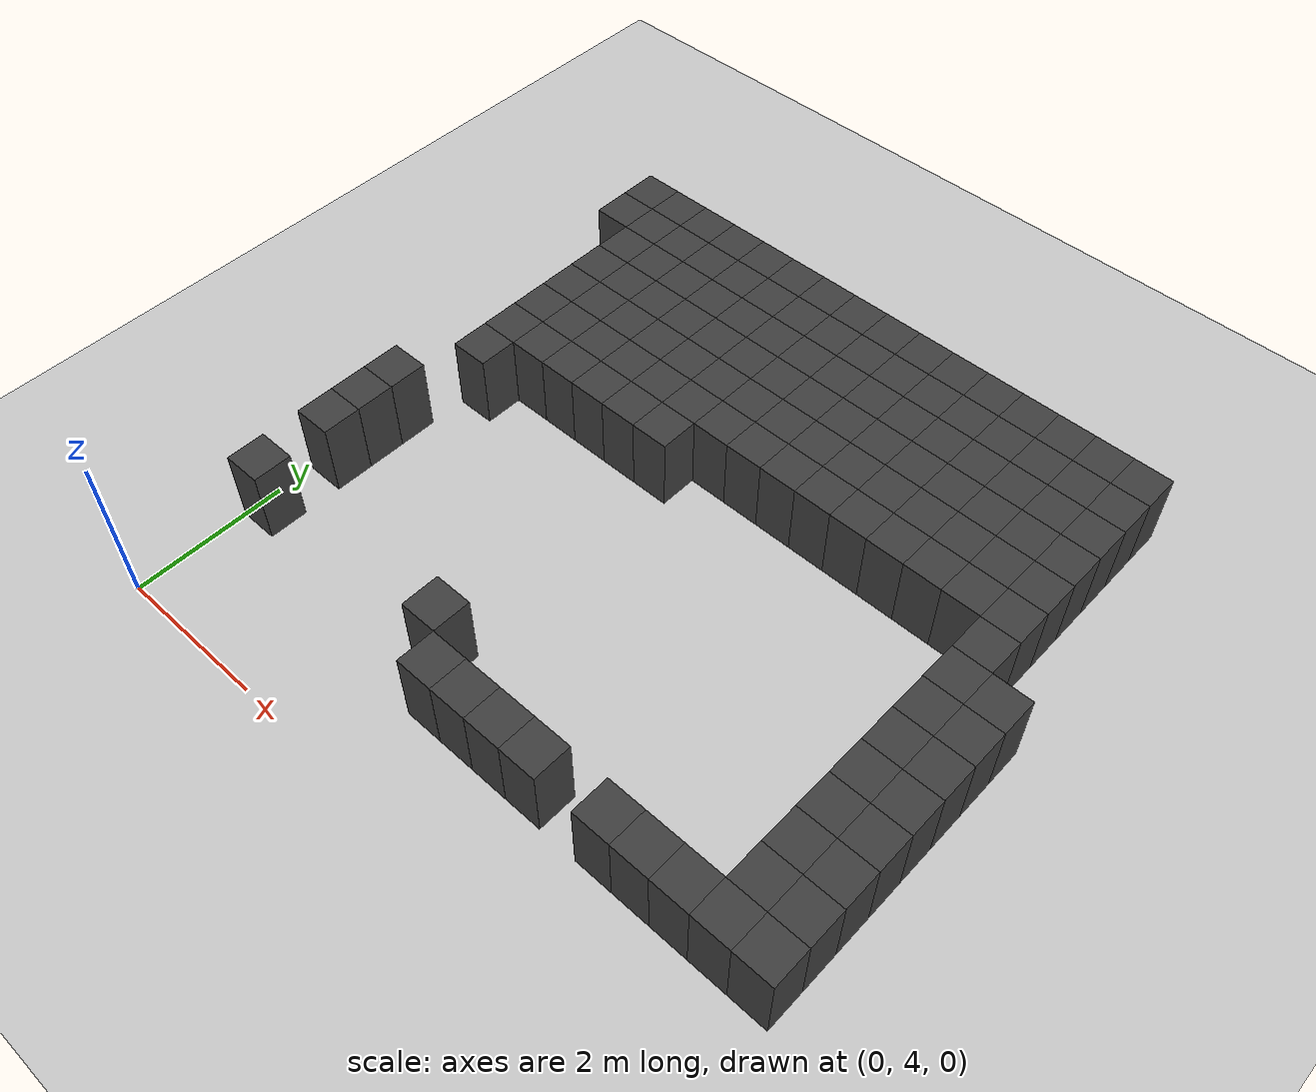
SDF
<sdf version="1.7">
 <world name="map_14056">
  <model name="ground_plane">
   <static>true</static>
   <link name="link">
    <collision name="collision">
     <geometry><plane><normal>0 0 1</normal><size>200 200</size></plane></geometry>
    </collision>
    <visual name="visual">
     <geometry><plane><normal>0 0 1</normal><size>200 200</size></plane></geometry>
     <material><ambient>0.8 0.8 0.8 1</ambient><diffuse>0.8 0.8 0.8 1</diffuse></material>
    </visual>
   </link>
  </model>
  <model name="maze_environment">
   <static>true</static>
   <link name="wall_25">
    <pose>0.250 12.250 0.500 0 0 0</pose>
    <collision name="col"><geometry><box><size>0.5 0.5 1.0</size></box></geometry></collision>
    <visual name="vis">
     <geometry><box><size>0.5 0.5 1.0</size></box></geometry>
     <material><ambient>0.15 0.15 0.15 1</ambient><diffuse>0.25 0.25 0.25 1</diffuse></material>
    </visual>
   </link>
   <link name="wall_26">
    <pose>0.750 12.250 0.500 0 0 0</pose>
    <collision name="col"><geometry><box><size>0.5 0.5 1.0</size></box></geometry></collision>
    <visual name="vis">
     <geometry><box><size>0.5 0.5 1.0</size></box></geometry>
     <material><ambient>0.15 0.15 0.15 1</ambient><diffuse>0.25 0.25 0.25 1</diffuse></material>
    </visual>
   </link>
   <link name="wall_27">
    <pose>1.250 12.250 0.500 0 0 0</pose>
    <collision name="col"><geometry><box><size>0.5 0.5 1.0</size></box></geometry></collision>
    <visual name="vis">
     <geometry><box><size>0.5 0.5 1.0</size></box></geometry>
     <material><ambient>0.15 0.15 0.15 1</ambient><diffuse>0.25 0.25 0.25 1</diffuse></material>
    </visual>
   </link>
   <link name="wall_28">
    <pose>1.750 12.250 0.500 0 0 0</pose>
    <collision name="col"><geometry><box><size>0.5 0.5 1.0</size></box></geometry></collision>
    <visual name="vis">
     <geometry><box><size>0.5 0.5 1.0</size></box></geometry>
     <material><ambient>0.15 0.15 0.15 1</ambient><diffuse>0.25 0.25 0.25 1</diffuse></material>
    </visual>
   </link>
   <link name="wall_29">
    <pose>2.250 12.250 0.500 0 0 0</pose>
    <collision name="col"><geometry><box><size>0.5 0.5 1.0</size></box></geometry></collision>
    <visual name="vis">
     <geometry><box><size>0.5 0.5 1.0</size></box></geometry>
     <material><ambient>0.15 0.15 0.15 1</ambient><diffuse>0.25 0.25 0.25 1</diffuse></material>
    </visual>
   </link>
   <link name="wall_30">
    <pose>2.750 12.250 0.500 0 0 0</pose>
    <collision name="col"><geometry><box><size>0.5 0.5 1.0</size></box></geometry></collision>
    <visual name="vis">
     <geometry><box><size>0.5 0.5 1.0</size></box></geometry>
     <material><ambient>0.15 0.15 0.15 1</ambient><diffuse>0.25 0.25 0.25 1</diffuse></material>
    </visual>
   </link>
   <link name="wall_31">
    <pose>3.250 12.250 0.500 0 0 0</pose>
    <collision name="col"><geometry><box><size>0.5 0.5 1.0</size></box></geometry></collision>
    <visual name="vis">
     <geometry><box><size>0.5 0.5 1.0</size></box></geometry>
     <material><ambient>0.15 0.15 0.15 1</ambient><diffuse>0.25 0.25 0.25 1</diffuse></material>
    </visual>
   </link>
   <link name="wall_32">
    <pose>3.750 12.250 0.500 0 0 0</pose>
    <collision name="col"><geometry><box><size>0.5 0.5 1.0</size></box></geometry></collision>
    <visual name="vis">
     <geometry><box><size>0.5 0.5 1.0</size></box></geometry>
     <material><ambient>0.15 0.15 0.15 1</ambient><diffuse>0.25 0.25 0.25 1</diffuse></material>
    </visual>
   </link>
   <link name="wall_33">
    <pose>4.250 12.250 0.500 0 0 0</pose>
    <collision name="col"><geometry><box><size>0.5 0.5 1.0</size></box></geometry></collision>
    <visual name="vis">
     <geometry><box><size>0.5 0.5 1.0</size></box></geometry>
     <material><ambient>0.15 0.15 0.15 1</ambient><diffuse>0.25 0.25 0.25 1</diffuse></material>
    </visual>
   </link>
   <link name="wall_34">
    <pose>4.750 12.250 0.500 0 0 0</pose>
    <collision name="col"><geometry><box><size>0.5 0.5 1.0</size></box></geometry></collision>
    <visual name="vis">
     <geometry><box><size>0.5 0.5 1.0</size></box></geometry>
     <material><ambient>0.15 0.15 0.15 1</ambient><diffuse>0.25 0.25 0.25 1</diffuse></material>
    </visual>
   </link>
   <link name="wall_35">
    <pose>5.250 12.250 0.500 0 0 0</pose>
    <collision name="col"><geometry><box><size>0.5 0.5 1.0</size></box></geometry></collision>
    <visual name="vis">
     <geometry><box><size>0.5 0.5 1.0</size></box></geometry>
     <material><ambient>0.15 0.15 0.15 1</ambient><diffuse>0.25 0.25 0.25 1</diffuse></material>
    </visual>
   </link>
   <link name="wall_36">
    <pose>5.750 12.250 0.500 0 0 0</pose>
    <collision name="col"><geometry><box><size>0.5 0.5 1.0</size></box></geometry></collision>
    <visual name="vis">
     <geometry><box><size>0.5 0.5 1.0</size></box></geometry>
     <material><ambient>0.15 0.15 0.15 1</ambient><diffuse>0.25 0.25 0.25 1</diffuse></material>
    </visual>
   </link>
   <link name="wall_37">
    <pose>6.250 12.250 0.500 0 0 0</pose>
    <collision name="col"><geometry><box><size>0.5 0.5 1.0</size></box></geometry></collision>
    <visual name="vis">
     <geometry><box><size>0.5 0.5 1.0</size></box></geometry>
     <material><ambient>0.15 0.15 0.15 1</ambient><diffuse>0.25 0.25 0.25 1</diffuse></material>
    </visual>
   </link>
   <link name="wall_38">
    <pose>6.750 12.250 0.500 0 0 0</pose>
    <collision name="col"><geometry><box><size>0.5 0.5 1.0</size></box></geometry></collision>
    <visual name="vis">
     <geometry><box><size>0.5 0.5 1.0</size></box></geometry>
     <material><ambient>0.15 0.15 0.15 1</ambient><diffuse>0.25 0.25 0.25 1</diffuse></material>
    </visual>
   </link>
   <link name="wall_39">
    <pose>7.250 12.250 0.500 0 0 0</pose>
    <collision name="col"><geometry><box><size>0.5 0.5 1.0</size></box></geometry></collision>
    <visual name="vis">
     <geometry><box><size>0.5 0.5 1.0</size></box></geometry>
     <material><ambient>0.15 0.15 0.15 1</ambient><diffuse>0.25 0.25 0.25 1</diffuse></material>
    </visual>
   </link>
   <link name="wall_40">
    <pose>7.750 12.250 0.500 0 0 0</pose>
    <collision name="col"><geometry><box><size>0.5 0.5 1.0</size></box></geometry></collision>
    <visual name="vis">
     <geometry><box><size>0.5 0.5 1.0</size></box></geometry>
     <material><ambient>0.15 0.15 0.15 1</ambient><diffuse>0.25 0.25 0.25 1</diffuse></material>
    </visual>
   </link>
   <link name="wall_72">
    <pose>0.250 11.750 0.500 0 0 0</pose>
    <collision name="col"><geometry><box><size>0.5 0.5 1.0</size></box></geometry></collision>
    <visual name="vis">
     <geometry><box><size>0.5 0.5 1.0</size></box></geometry>
     <material><ambient>0.15 0.15 0.15 1</ambient><diffuse>0.25 0.25 0.25 1</diffuse></material>
    </visual>
   </link>
   <link name="wall_73">
    <pose>0.750 11.750 0.500 0 0 0</pose>
    <collision name="col"><geometry><box><size>0.5 0.5 1.0</size></box></geometry></collision>
    <visual name="vis">
     <geometry><box><size>0.5 0.5 1.0</size></box></geometry>
     <material><ambient>0.15 0.15 0.15 1</ambient><diffuse>0.25 0.25 0.25 1</diffuse></material>
    </visual>
   </link>
   <link name="wall_74">
    <pose>1.250 11.750 0.500 0 0 0</pose>
    <collision name="col"><geometry><box><size>0.5 0.5 1.0</size></box></geometry></collision>
    <visual name="vis">
     <geometry><box><size>0.5 0.5 1.0</size></box></geometry>
     <material><ambient>0.15 0.15 0.15 1</ambient><diffuse>0.25 0.25 0.25 1</diffuse></material>
    </visual>
   </link>
   <link name="wall_75">
    <pose>1.750 11.750 0.500 0 0 0</pose>
    <collision name="col"><geometry><box><size>0.5 0.5 1.0</size></box></geometry></collision>
    <visual name="vis">
     <geometry><box><size>0.5 0.5 1.0</size></box></geometry>
     <material><ambient>0.15 0.15 0.15 1</ambient><diffuse>0.25 0.25 0.25 1</diffuse></material>
    </visual>
   </link>
   <link name="wall_76">
    <pose>2.250 11.750 0.500 0 0 0</pose>
    <collision name="col"><geometry><box><size>0.5 0.5 1.0</size></box></geometry></collision>
    <visual name="vis">
     <geometry><box><size>0.5 0.5 1.0</size></box></geometry>
     <material><ambient>0.15 0.15 0.15 1</ambient><diffuse>0.25 0.25 0.25 1</diffuse></material>
    </visual>
   </link>
   <link name="wall_77">
    <pose>2.750 11.750 0.500 0 0 0</pose>
    <collision name="col"><geometry><box><size>0.5 0.5 1.0</size></box></geometry></collision>
    <visual name="vis">
     <geometry><box><size>0.5 0.5 1.0</size></box></geometry>
     <material><ambient>0.15 0.15 0.15 1</ambient><diffuse>0.25 0.25 0.25 1</diffuse></material>
    </visual>
   </link>
   <link name="wall_78">
    <pose>3.250 11.750 0.500 0 0 0</pose>
    <collision name="col"><geometry><box><size>0.5 0.5 1.0</size></box></geometry></collision>
    <visual name="vis">
     <geometry><box><size>0.5 0.5 1.0</size></box></geometry>
     <material><ambient>0.15 0.15 0.15 1</ambient><diffuse>0.25 0.25 0.25 1</diffuse></material>
    </visual>
   </link>
   <link name="wall_79">
    <pose>3.750 11.750 0.500 0 0 0</pose>
    <collision name="col"><geometry><box><size>0.5 0.5 1.0</size></box></geometry></collision>
    <visual name="vis">
     <geometry><box><size>0.5 0.5 1.0</size></box></geometry>
     <material><ambient>0.15 0.15 0.15 1</ambient><diffuse>0.25 0.25 0.25 1</diffuse></material>
    </visual>
   </link>
   <link name="wall_80">
    <pose>4.250 11.750 0.500 0 0 0</pose>
    <collision name="col"><geometry><box><size>0.5 0.5 1.0</size></box></geometry></collision>
    <visual name="vis">
     <geometry><box><size>0.5 0.5 1.0</size></box></geometry>
     <material><ambient>0.15 0.15 0.15 1</ambient><diffuse>0.25 0.25 0.25 1</diffuse></material>
    </visual>
   </link>
   <link name="wall_81">
    <pose>4.750 11.750 0.500 0 0 0</pose>
    <collision name="col"><geometry><box><size>0.5 0.5 1.0</size></box></geometry></collision>
    <visual name="vis">
     <geometry><box><size>0.5 0.5 1.0</size></box></geometry>
     <material><ambient>0.15 0.15 0.15 1</ambient><diffuse>0.25 0.25 0.25 1</diffuse></material>
    </visual>
   </link>
   <link name="wall_82">
    <pose>5.250 11.750 0.500 0 0 0</pose>
    <collision name="col"><geometry><box><size>0.5 0.5 1.0</size></box></geometry></collision>
    <visual name="vis">
     <geometry><box><size>0.5 0.5 1.0</size></box></geometry>
     <material><ambient>0.15 0.15 0.15 1</ambient><diffuse>0.25 0.25 0.25 1</diffuse></material>
    </visual>
   </link>
   <link name="wall_83">
    <pose>5.750 11.750 0.500 0 0 0</pose>
    <collision name="col"><geometry><box><size>0.5 0.5 1.0</size></box></geometry></collision>
    <visual name="vis">
     <geometry><box><size>0.5 0.5 1.0</size></box></geometry>
     <material><ambient>0.15 0.15 0.15 1</ambient><diffuse>0.25 0.25 0.25 1</diffuse></material>
    </visual>
   </link>
   <link name="wall_84">
    <pose>6.250 11.750 0.500 0 0 0</pose>
    <collision name="col"><geometry><box><size>0.5 0.5 1.0</size></box></geometry></collision>
    <visual name="vis">
     <geometry><box><size>0.5 0.5 1.0</size></box></geometry>
     <material><ambient>0.15 0.15 0.15 1</ambient><diffuse>0.25 0.25 0.25 1</diffuse></material>
    </visual>
   </link>
   <link name="wall_85">
    <pose>6.750 11.750 0.500 0 0 0</pose>
    <collision name="col"><geometry><box><size>0.5 0.5 1.0</size></box></geometry></collision>
    <visual name="vis">
     <geometry><box><size>0.5 0.5 1.0</size></box></geometry>
     <material><ambient>0.15 0.15 0.15 1</ambient><diffuse>0.25 0.25 0.25 1</diffuse></material>
    </visual>
   </link>
   <link name="wall_86">
    <pose>7.250 11.750 0.500 0 0 0</pose>
    <collision name="col"><geometry><box><size>0.5 0.5 1.0</size></box></geometry></collision>
    <visual name="vis">
     <geometry><box><size>0.5 0.5 1.0</size></box></geometry>
     <material><ambient>0.15 0.15 0.15 1</ambient><diffuse>0.25 0.25 0.25 1</diffuse></material>
    </visual>
   </link>
   <link name="wall_87">
    <pose>7.750 11.750 0.500 0 0 0</pose>
    <collision name="col"><geometry><box><size>0.5 0.5 1.0</size></box></geometry></collision>
    <visual name="vis">
     <geometry><box><size>0.5 0.5 1.0</size></box></geometry>
     <material><ambient>0.15 0.15 0.15 1</ambient><diffuse>0.25 0.25 0.25 1</diffuse></material>
    </visual>
   </link>
   <link name="wall_112">
    <pose>0.750 11.250 0.500 0 0 0</pose>
    <collision name="col"><geometry><box><size>0.5 0.5 1.0</size></box></geometry></collision>
    <visual name="vis">
     <geometry><box><size>0.5 0.5 1.0</size></box></geometry>
     <material><ambient>0.15 0.15 0.15 1</ambient><diffuse>0.25 0.25 0.25 1</diffuse></material>
    </visual>
   </link>
   <link name="wall_113">
    <pose>1.250 11.250 0.500 0 0 0</pose>
    <collision name="col"><geometry><box><size>0.5 0.5 1.0</size></box></geometry></collision>
    <visual name="vis">
     <geometry><box><size>0.5 0.5 1.0</size></box></geometry>
     <material><ambient>0.15 0.15 0.15 1</ambient><diffuse>0.25 0.25 0.25 1</diffuse></material>
    </visual>
   </link>
   <link name="wall_114">
    <pose>1.750 11.250 0.500 0 0 0</pose>
    <collision name="col"><geometry><box><size>0.5 0.5 1.0</size></box></geometry></collision>
    <visual name="vis">
     <geometry><box><size>0.5 0.5 1.0</size></box></geometry>
     <material><ambient>0.15 0.15 0.15 1</ambient><diffuse>0.25 0.25 0.25 1</diffuse></material>
    </visual>
   </link>
   <link name="wall_115">
    <pose>2.250 11.250 0.500 0 0 0</pose>
    <collision name="col"><geometry><box><size>0.5 0.5 1.0</size></box></geometry></collision>
    <visual name="vis">
     <geometry><box><size>0.5 0.5 1.0</size></box></geometry>
     <material><ambient>0.15 0.15 0.15 1</ambient><diffuse>0.25 0.25 0.25 1</diffuse></material>
    </visual>
   </link>
   <link name="wall_116">
    <pose>2.750 11.250 0.500 0 0 0</pose>
    <collision name="col"><geometry><box><size>0.5 0.5 1.0</size></box></geometry></collision>
    <visual name="vis">
     <geometry><box><size>0.5 0.5 1.0</size></box></geometry>
     <material><ambient>0.15 0.15 0.15 1</ambient><diffuse>0.25 0.25 0.25 1</diffuse></material>
    </visual>
   </link>
   <link name="wall_117">
    <pose>3.250 11.250 0.500 0 0 0</pose>
    <collision name="col"><geometry><box><size>0.5 0.5 1.0</size></box></geometry></collision>
    <visual name="vis">
     <geometry><box><size>0.5 0.5 1.0</size></box></geometry>
     <material><ambient>0.15 0.15 0.15 1</ambient><diffuse>0.25 0.25 0.25 1</diffuse></material>
    </visual>
   </link>
   <link name="wall_118">
    <pose>3.750 11.250 0.500 0 0 0</pose>
    <collision name="col"><geometry><box><size>0.5 0.5 1.0</size></box></geometry></collision>
    <visual name="vis">
     <geometry><box><size>0.5 0.5 1.0</size></box></geometry>
     <material><ambient>0.15 0.15 0.15 1</ambient><diffuse>0.25 0.25 0.25 1</diffuse></material>
    </visual>
   </link>
   <link name="wall_119">
    <pose>4.250 11.250 0.500 0 0 0</pose>
    <collision name="col"><geometry><box><size>0.5 0.5 1.0</size></box></geometry></collision>
    <visual name="vis">
     <geometry><box><size>0.5 0.5 1.0</size></box></geometry>
     <material><ambient>0.15 0.15 0.15 1</ambient><diffuse>0.25 0.25 0.25 1</diffuse></material>
    </visual>
   </link>
   <link name="wall_120">
    <pose>4.750 11.250 0.500 0 0 0</pose>
    <collision name="col"><geometry><box><size>0.5 0.5 1.0</size></box></geometry></collision>
    <visual name="vis">
     <geometry><box><size>0.5 0.5 1.0</size></box></geometry>
     <material><ambient>0.15 0.15 0.15 1</ambient><diffuse>0.25 0.25 0.25 1</diffuse></material>
    </visual>
   </link>
   <link name="wall_121">
    <pose>5.250 11.250 0.500 0 0 0</pose>
    <collision name="col"><geometry><box><size>0.5 0.5 1.0</size></box></geometry></collision>
    <visual name="vis">
     <geometry><box><size>0.5 0.5 1.0</size></box></geometry>
     <material><ambient>0.15 0.15 0.15 1</ambient><diffuse>0.25 0.25 0.25 1</diffuse></material>
    </visual>
   </link>
   <link name="wall_122">
    <pose>5.750 11.250 0.500 0 0 0</pose>
    <collision name="col"><geometry><box><size>0.5 0.5 1.0</size></box></geometry></collision>
    <visual name="vis">
     <geometry><box><size>0.5 0.5 1.0</size></box></geometry>
     <material><ambient>0.15 0.15 0.15 1</ambient><diffuse>0.25 0.25 0.25 1</diffuse></material>
    </visual>
   </link>
   <link name="wall_123">
    <pose>6.250 11.250 0.500 0 0 0</pose>
    <collision name="col"><geometry><box><size>0.5 0.5 1.0</size></box></geometry></collision>
    <visual name="vis">
     <geometry><box><size>0.5 0.5 1.0</size></box></geometry>
     <material><ambient>0.15 0.15 0.15 1</ambient><diffuse>0.25 0.25 0.25 1</diffuse></material>
    </visual>
   </link>
   <link name="wall_124">
    <pose>6.750 11.250 0.500 0 0 0</pose>
    <collision name="col"><geometry><box><size>0.5 0.5 1.0</size></box></geometry></collision>
    <visual name="vis">
     <geometry><box><size>0.5 0.5 1.0</size></box></geometry>
     <material><ambient>0.15 0.15 0.15 1</ambient><diffuse>0.25 0.25 0.25 1</diffuse></material>
    </visual>
   </link>
   <link name="wall_125">
    <pose>7.250 11.250 0.500 0 0 0</pose>
    <collision name="col"><geometry><box><size>0.5 0.5 1.0</size></box></geometry></collision>
    <visual name="vis">
     <geometry><box><size>0.5 0.5 1.0</size></box></geometry>
     <material><ambient>0.15 0.15 0.15 1</ambient><diffuse>0.25 0.25 0.25 1</diffuse></material>
    </visual>
   </link>
   <link name="wall_126">
    <pose>7.750 11.250 0.500 0 0 0</pose>
    <collision name="col"><geometry><box><size>0.5 0.5 1.0</size></box></geometry></collision>
    <visual name="vis">
     <geometry><box><size>0.5 0.5 1.0</size></box></geometry>
     <material><ambient>0.15 0.15 0.15 1</ambient><diffuse>0.25 0.25 0.25 1</diffuse></material>
    </visual>
   </link>
   <link name="wall_151">
    <pose>0.750 10.750 0.500 0 0 0</pose>
    <collision name="col"><geometry><box><size>0.5 0.5 1.0</size></box></geometry></collision>
    <visual name="vis">
     <geometry><box><size>0.5 0.5 1.0</size></box></geometry>
     <material><ambient>0.15 0.15 0.15 1</ambient><diffuse>0.25 0.25 0.25 1</diffuse></material>
    </visual>
   </link>
   <link name="wall_152">
    <pose>1.250 10.750 0.500 0 0 0</pose>
    <collision name="col"><geometry><box><size>0.5 0.5 1.0</size></box></geometry></collision>
    <visual name="vis">
     <geometry><box><size>0.5 0.5 1.0</size></box></geometry>
     <material><ambient>0.15 0.15 0.15 1</ambient><diffuse>0.25 0.25 0.25 1</diffuse></material>
    </visual>
   </link>
   <link name="wall_153">
    <pose>1.750 10.750 0.500 0 0 0</pose>
    <collision name="col"><geometry><box><size>0.5 0.5 1.0</size></box></geometry></collision>
    <visual name="vis">
     <geometry><box><size>0.5 0.5 1.0</size></box></geometry>
     <material><ambient>0.15 0.15 0.15 1</ambient><diffuse>0.25 0.25 0.25 1</diffuse></material>
    </visual>
   </link>
   <link name="wall_154">
    <pose>2.250 10.750 0.500 0 0 0</pose>
    <collision name="col"><geometry><box><size>0.5 0.5 1.0</size></box></geometry></collision>
    <visual name="vis">
     <geometry><box><size>0.5 0.5 1.0</size></box></geometry>
     <material><ambient>0.15 0.15 0.15 1</ambient><diffuse>0.25 0.25 0.25 1</diffuse></material>
    </visual>
   </link>
   <link name="wall_155">
    <pose>2.750 10.750 0.500 0 0 0</pose>
    <collision name="col"><geometry><box><size>0.5 0.5 1.0</size></box></geometry></collision>
    <visual name="vis">
     <geometry><box><size>0.5 0.5 1.0</size></box></geometry>
     <material><ambient>0.15 0.15 0.15 1</ambient><diffuse>0.25 0.25 0.25 1</diffuse></material>
    </visual>
   </link>
   <link name="wall_156">
    <pose>3.250 10.750 0.500 0 0 0</pose>
    <collision name="col"><geometry><box><size>0.5 0.5 1.0</size></box></geometry></collision>
    <visual name="vis">
     <geometry><box><size>0.5 0.5 1.0</size></box></geometry>
     <material><ambient>0.15 0.15 0.15 1</ambient><diffuse>0.25 0.25 0.25 1</diffuse></material>
    </visual>
   </link>
   <link name="wall_157">
    <pose>3.750 10.750 0.500 0 0 0</pose>
    <collision name="col"><geometry><box><size>0.5 0.5 1.0</size></box></geometry></collision>
    <visual name="vis">
     <geometry><box><size>0.5 0.5 1.0</size></box></geometry>
     <material><ambient>0.15 0.15 0.15 1</ambient><diffuse>0.25 0.25 0.25 1</diffuse></material>
    </visual>
   </link>
   <link name="wall_158">
    <pose>4.250 10.750 0.500 0 0 0</pose>
    <collision name="col"><geometry><box><size>0.5 0.5 1.0</size></box></geometry></collision>
    <visual name="vis">
     <geometry><box><size>0.5 0.5 1.0</size></box></geometry>
     <material><ambient>0.15 0.15 0.15 1</ambient><diffuse>0.25 0.25 0.25 1</diffuse></material>
    </visual>
   </link>
   <link name="wall_159">
    <pose>4.750 10.750 0.500 0 0 0</pose>
    <collision name="col"><geometry><box><size>0.5 0.5 1.0</size></box></geometry></collision>
    <visual name="vis">
     <geometry><box><size>0.5 0.5 1.0</size></box></geometry>
     <material><ambient>0.15 0.15 0.15 1</ambient><diffuse>0.25 0.25 0.25 1</diffuse></material>
    </visual>
   </link>
   <link name="wall_160">
    <pose>5.250 10.750 0.500 0 0 0</pose>
    <collision name="col"><geometry><box><size>0.5 0.5 1.0</size></box></geometry></collision>
    <visual name="vis">
     <geometry><box><size>0.5 0.5 1.0</size></box></geometry>
     <material><ambient>0.15 0.15 0.15 1</ambient><diffuse>0.25 0.25 0.25 1</diffuse></material>
    </visual>
   </link>
   <link name="wall_161">
    <pose>5.750 10.750 0.500 0 0 0</pose>
    <collision name="col"><geometry><box><size>0.5 0.5 1.0</size></box></geometry></collision>
    <visual name="vis">
     <geometry><box><size>0.5 0.5 1.0</size></box></geometry>
     <material><ambient>0.15 0.15 0.15 1</ambient><diffuse>0.25 0.25 0.25 1</diffuse></material>
    </visual>
   </link>
   <link name="wall_162">
    <pose>6.250 10.750 0.500 0 0 0</pose>
    <collision name="col"><geometry><box><size>0.5 0.5 1.0</size></box></geometry></collision>
    <visual name="vis">
     <geometry><box><size>0.5 0.5 1.0</size></box></geometry>
     <material><ambient>0.15 0.15 0.15 1</ambient><diffuse>0.25 0.25 0.25 1</diffuse></material>
    </visual>
   </link>
   <link name="wall_163">
    <pose>6.750 10.750 0.500 0 0 0</pose>
    <collision name="col"><geometry><box><size>0.5 0.5 1.0</size></box></geometry></collision>
    <visual name="vis">
     <geometry><box><size>0.5 0.5 1.0</size></box></geometry>
     <material><ambient>0.15 0.15 0.15 1</ambient><diffuse>0.25 0.25 0.25 1</diffuse></material>
    </visual>
   </link>
   <link name="wall_164">
    <pose>7.250 10.750 0.500 0 0 0</pose>
    <collision name="col"><geometry><box><size>0.5 0.5 1.0</size></box></geometry></collision>
    <visual name="vis">
     <geometry><box><size>0.5 0.5 1.0</size></box></geometry>
     <material><ambient>0.15 0.15 0.15 1</ambient><diffuse>0.25 0.25 0.25 1</diffuse></material>
    </visual>
   </link>
   <link name="wall_165">
    <pose>7.750 10.750 0.500 0 0 0</pose>
    <collision name="col"><geometry><box><size>0.5 0.5 1.0</size></box></geometry></collision>
    <visual name="vis">
     <geometry><box><size>0.5 0.5 1.0</size></box></geometry>
     <material><ambient>0.15 0.15 0.15 1</ambient><diffuse>0.25 0.25 0.25 1</diffuse></material>
    </visual>
   </link>
   <link name="wall_192">
    <pose>0.750 10.250 0.500 0 0 0</pose>
    <collision name="col"><geometry><box><size>0.5 0.5 1.0</size></box></geometry></collision>
    <visual name="vis">
     <geometry><box><size>0.5 0.5 1.0</size></box></geometry>
     <material><ambient>0.15 0.15 0.15 1</ambient><diffuse>0.25 0.25 0.25 1</diffuse></material>
    </visual>
   </link>
   <link name="wall_193">
    <pose>1.250 10.250 0.500 0 0 0</pose>
    <collision name="col"><geometry><box><size>0.5 0.5 1.0</size></box></geometry></collision>
    <visual name="vis">
     <geometry><box><size>0.5 0.5 1.0</size></box></geometry>
     <material><ambient>0.15 0.15 0.15 1</ambient><diffuse>0.25 0.25 0.25 1</diffuse></material>
    </visual>
   </link>
   <link name="wall_194">
    <pose>1.750 10.250 0.500 0 0 0</pose>
    <collision name="col"><geometry><box><size>0.5 0.5 1.0</size></box></geometry></collision>
    <visual name="vis">
     <geometry><box><size>0.5 0.5 1.0</size></box></geometry>
     <material><ambient>0.15 0.15 0.15 1</ambient><diffuse>0.25 0.25 0.25 1</diffuse></material>
    </visual>
   </link>
   <link name="wall_195">
    <pose>2.250 10.250 0.500 0 0 0</pose>
    <collision name="col"><geometry><box><size>0.5 0.5 1.0</size></box></geometry></collision>
    <visual name="vis">
     <geometry><box><size>0.5 0.5 1.0</size></box></geometry>
     <material><ambient>0.15 0.15 0.15 1</ambient><diffuse>0.25 0.25 0.25 1</diffuse></material>
    </visual>
   </link>
   <link name="wall_196">
    <pose>2.750 10.250 0.500 0 0 0</pose>
    <collision name="col"><geometry><box><size>0.5 0.5 1.0</size></box></geometry></collision>
    <visual name="vis">
     <geometry><box><size>0.5 0.5 1.0</size></box></geometry>
     <material><ambient>0.15 0.15 0.15 1</ambient><diffuse>0.25 0.25 0.25 1</diffuse></material>
    </visual>
   </link>
   <link name="wall_197">
    <pose>3.250 10.250 0.500 0 0 0</pose>
    <collision name="col"><geometry><box><size>0.5 0.5 1.0</size></box></geometry></collision>
    <visual name="vis">
     <geometry><box><size>0.5 0.5 1.0</size></box></geometry>
     <material><ambient>0.15 0.15 0.15 1</ambient><diffuse>0.25 0.25 0.25 1</diffuse></material>
    </visual>
   </link>
   <link name="wall_198">
    <pose>3.750 10.250 0.500 0 0 0</pose>
    <collision name="col"><geometry><box><size>0.5 0.5 1.0</size></box></geometry></collision>
    <visual name="vis">
     <geometry><box><size>0.5 0.5 1.0</size></box></geometry>
     <material><ambient>0.15 0.15 0.15 1</ambient><diffuse>0.25 0.25 0.25 1</diffuse></material>
    </visual>
   </link>
   <link name="wall_199">
    <pose>4.250 10.250 0.500 0 0 0</pose>
    <collision name="col"><geometry><box><size>0.5 0.5 1.0</size></box></geometry></collision>
    <visual name="vis">
     <geometry><box><size>0.5 0.5 1.0</size></box></geometry>
     <material><ambient>0.15 0.15 0.15 1</ambient><diffuse>0.25 0.25 0.25 1</diffuse></material>
    </visual>
   </link>
   <link name="wall_200">
    <pose>4.750 10.250 0.500 0 0 0</pose>
    <collision name="col"><geometry><box><size>0.5 0.5 1.0</size></box></geometry></collision>
    <visual name="vis">
     <geometry><box><size>0.5 0.5 1.0</size></box></geometry>
     <material><ambient>0.15 0.15 0.15 1</ambient><diffuse>0.25 0.25 0.25 1</diffuse></material>
    </visual>
   </link>
   <link name="wall_201">
    <pose>5.250 10.250 0.500 0 0 0</pose>
    <collision name="col"><geometry><box><size>0.5 0.5 1.0</size></box></geometry></collision>
    <visual name="vis">
     <geometry><box><size>0.5 0.5 1.0</size></box></geometry>
     <material><ambient>0.15 0.15 0.15 1</ambient><diffuse>0.25 0.25 0.25 1</diffuse></material>
    </visual>
   </link>
   <link name="wall_202">
    <pose>5.750 10.250 0.500 0 0 0</pose>
    <collision name="col"><geometry><box><size>0.5 0.5 1.0</size></box></geometry></collision>
    <visual name="vis">
     <geometry><box><size>0.5 0.5 1.0</size></box></geometry>
     <material><ambient>0.15 0.15 0.15 1</ambient><diffuse>0.25 0.25 0.25 1</diffuse></material>
    </visual>
   </link>
   <link name="wall_203">
    <pose>6.250 10.250 0.500 0 0 0</pose>
    <collision name="col"><geometry><box><size>0.5 0.5 1.0</size></box></geometry></collision>
    <visual name="vis">
     <geometry><box><size>0.5 0.5 1.0</size></box></geometry>
     <material><ambient>0.15 0.15 0.15 1</ambient><diffuse>0.25 0.25 0.25 1</diffuse></material>
    </visual>
   </link>
   <link name="wall_204">
    <pose>6.750 10.250 0.500 0 0 0</pose>
    <collision name="col"><geometry><box><size>0.5 0.5 1.0</size></box></geometry></collision>
    <visual name="vis">
     <geometry><box><size>0.5 0.5 1.0</size></box></geometry>
     <material><ambient>0.15 0.15 0.15 1</ambient><diffuse>0.25 0.25 0.25 1</diffuse></material>
    </visual>
   </link>
   <link name="wall_205">
    <pose>7.250 10.250 0.500 0 0 0</pose>
    <collision name="col"><geometry><box><size>0.5 0.5 1.0</size></box></geometry></collision>
    <visual name="vis">
     <geometry><box><size>0.5 0.5 1.0</size></box></geometry>
     <material><ambient>0.15 0.15 0.15 1</ambient><diffuse>0.25 0.25 0.25 1</diffuse></material>
    </visual>
   </link>
   <link name="wall_206">
    <pose>7.750 10.250 0.500 0 0 0</pose>
    <collision name="col"><geometry><box><size>0.5 0.5 1.0</size></box></geometry></collision>
    <visual name="vis">
     <geometry><box><size>0.5 0.5 1.0</size></box></geometry>
     <material><ambient>0.15 0.15 0.15 1</ambient><diffuse>0.25 0.25 0.25 1</diffuse></material>
    </visual>
   </link>
   <link name="wall_233">
    <pose>0.750 9.750 0.500 0 0 0</pose>
    <collision name="col"><geometry><box><size>0.5 0.5 1.0</size></box></geometry></collision>
    <visual name="vis">
     <geometry><box><size>0.5 0.5 1.0</size></box></geometry>
     <material><ambient>0.15 0.15 0.15 1</ambient><diffuse>0.25 0.25 0.25 1</diffuse></material>
    </visual>
   </link>
   <link name="wall_234">
    <pose>1.250 9.750 0.500 0 0 0</pose>
    <collision name="col"><geometry><box><size>0.5 0.5 1.0</size></box></geometry></collision>
    <visual name="vis">
     <geometry><box><size>0.5 0.5 1.0</size></box></geometry>
     <material><ambient>0.15 0.15 0.15 1</ambient><diffuse>0.25 0.25 0.25 1</diffuse></material>
    </visual>
   </link>
   <link name="wall_235">
    <pose>1.750 9.750 0.500 0 0 0</pose>
    <collision name="col"><geometry><box><size>0.5 0.5 1.0</size></box></geometry></collision>
    <visual name="vis">
     <geometry><box><size>0.5 0.5 1.0</size></box></geometry>
     <material><ambient>0.15 0.15 0.15 1</ambient><diffuse>0.25 0.25 0.25 1</diffuse></material>
    </visual>
   </link>
   <link name="wall_236">
    <pose>2.250 9.750 0.500 0 0 0</pose>
    <collision name="col"><geometry><box><size>0.5 0.5 1.0</size></box></geometry></collision>
    <visual name="vis">
     <geometry><box><size>0.5 0.5 1.0</size></box></geometry>
     <material><ambient>0.15 0.15 0.15 1</ambient><diffuse>0.25 0.25 0.25 1</diffuse></material>
    </visual>
   </link>
   <link name="wall_237">
    <pose>2.750 9.750 0.500 0 0 0</pose>
    <collision name="col"><geometry><box><size>0.5 0.5 1.0</size></box></geometry></collision>
    <visual name="vis">
     <geometry><box><size>0.5 0.5 1.0</size></box></geometry>
     <material><ambient>0.15 0.15 0.15 1</ambient><diffuse>0.25 0.25 0.25 1</diffuse></material>
    </visual>
   </link>
   <link name="wall_238">
    <pose>3.250 9.750 0.500 0 0 0</pose>
    <collision name="col"><geometry><box><size>0.5 0.5 1.0</size></box></geometry></collision>
    <visual name="vis">
     <geometry><box><size>0.5 0.5 1.0</size></box></geometry>
     <material><ambient>0.15 0.15 0.15 1</ambient><diffuse>0.25 0.25 0.25 1</diffuse></material>
    </visual>
   </link>
   <link name="wall_239">
    <pose>3.750 9.750 0.500 0 0 0</pose>
    <collision name="col"><geometry><box><size>0.5 0.5 1.0</size></box></geometry></collision>
    <visual name="vis">
     <geometry><box><size>0.5 0.5 1.0</size></box></geometry>
     <material><ambient>0.15 0.15 0.15 1</ambient><diffuse>0.25 0.25 0.25 1</diffuse></material>
    </visual>
   </link>
   <link name="wall_240">
    <pose>4.250 9.750 0.500 0 0 0</pose>
    <collision name="col"><geometry><box><size>0.5 0.5 1.0</size></box></geometry></collision>
    <visual name="vis">
     <geometry><box><size>0.5 0.5 1.0</size></box></geometry>
     <material><ambient>0.15 0.15 0.15 1</ambient><diffuse>0.25 0.25 0.25 1</diffuse></material>
    </visual>
   </link>
   <link name="wall_241">
    <pose>4.750 9.750 0.500 0 0 0</pose>
    <collision name="col"><geometry><box><size>0.5 0.5 1.0</size></box></geometry></collision>
    <visual name="vis">
     <geometry><box><size>0.5 0.5 1.0</size></box></geometry>
     <material><ambient>0.15 0.15 0.15 1</ambient><diffuse>0.25 0.25 0.25 1</diffuse></material>
    </visual>
   </link>
   <link name="wall_242">
    <pose>5.250 9.750 0.500 0 0 0</pose>
    <collision name="col"><geometry><box><size>0.5 0.5 1.0</size></box></geometry></collision>
    <visual name="vis">
     <geometry><box><size>0.5 0.5 1.0</size></box></geometry>
     <material><ambient>0.15 0.15 0.15 1</ambient><diffuse>0.25 0.25 0.25 1</diffuse></material>
    </visual>
   </link>
   <link name="wall_243">
    <pose>5.750 9.750 0.500 0 0 0</pose>
    <collision name="col"><geometry><box><size>0.5 0.5 1.0</size></box></geometry></collision>
    <visual name="vis">
     <geometry><box><size>0.5 0.5 1.0</size></box></geometry>
     <material><ambient>0.15 0.15 0.15 1</ambient><diffuse>0.25 0.25 0.25 1</diffuse></material>
    </visual>
   </link>
   <link name="wall_244">
    <pose>6.250 9.750 0.500 0 0 0</pose>
    <collision name="col"><geometry><box><size>0.5 0.5 1.0</size></box></geometry></collision>
    <visual name="vis">
     <geometry><box><size>0.5 0.5 1.0</size></box></geometry>
     <material><ambient>0.15 0.15 0.15 1</ambient><diffuse>0.25 0.25 0.25 1</diffuse></material>
    </visual>
   </link>
   <link name="wall_245">
    <pose>6.750 9.750 0.500 0 0 0</pose>
    <collision name="col"><geometry><box><size>0.5 0.5 1.0</size></box></geometry></collision>
    <visual name="vis">
     <geometry><box><size>0.5 0.5 1.0</size></box></geometry>
     <material><ambient>0.15 0.15 0.15 1</ambient><diffuse>0.25 0.25 0.25 1</diffuse></material>
    </visual>
   </link>
   <link name="wall_246">
    <pose>7.250 9.750 0.500 0 0 0</pose>
    <collision name="col"><geometry><box><size>0.5 0.5 1.0</size></box></geometry></collision>
    <visual name="vis">
     <geometry><box><size>0.5 0.5 1.0</size></box></geometry>
     <material><ambient>0.15 0.15 0.15 1</ambient><diffuse>0.25 0.25 0.25 1</diffuse></material>
    </visual>
   </link>
   <link name="wall_247">
    <pose>7.750 9.750 0.500 0 0 0</pose>
    <collision name="col"><geometry><box><size>0.5 0.5 1.0</size></box></geometry></collision>
    <visual name="vis">
     <geometry><box><size>0.5 0.5 1.0</size></box></geometry>
     <material><ambient>0.15 0.15 0.15 1</ambient><diffuse>0.25 0.25 0.25 1</diffuse></material>
    </visual>
   </link>
   <link name="wall_274">
    <pose>0.750 9.250 0.500 0 0 0</pose>
    <collision name="col"><geometry><box><size>0.5 0.5 1.0</size></box></geometry></collision>
    <visual name="vis">
     <geometry><box><size>0.5 0.5 1.0</size></box></geometry>
     <material><ambient>0.15 0.15 0.15 1</ambient><diffuse>0.25 0.25 0.25 1</diffuse></material>
    </visual>
   </link>
   <link name="wall_275">
    <pose>1.250 9.250 0.500 0 0 0</pose>
    <collision name="col"><geometry><box><size>0.5 0.5 1.0</size></box></geometry></collision>
    <visual name="vis">
     <geometry><box><size>0.5 0.5 1.0</size></box></geometry>
     <material><ambient>0.15 0.15 0.15 1</ambient><diffuse>0.25 0.25 0.25 1</diffuse></material>
    </visual>
   </link>
   <link name="wall_276">
    <pose>1.750 9.250 0.500 0 0 0</pose>
    <collision name="col"><geometry><box><size>0.5 0.5 1.0</size></box></geometry></collision>
    <visual name="vis">
     <geometry><box><size>0.5 0.5 1.0</size></box></geometry>
     <material><ambient>0.15 0.15 0.15 1</ambient><diffuse>0.25 0.25 0.25 1</diffuse></material>
    </visual>
   </link>
   <link name="wall_277">
    <pose>2.250 9.250 0.500 0 0 0</pose>
    <collision name="col"><geometry><box><size>0.5 0.5 1.0</size></box></geometry></collision>
    <visual name="vis">
     <geometry><box><size>0.5 0.5 1.0</size></box></geometry>
     <material><ambient>0.15 0.15 0.15 1</ambient><diffuse>0.25 0.25 0.25 1</diffuse></material>
    </visual>
   </link>
   <link name="wall_278">
    <pose>2.750 9.250 0.500 0 0 0</pose>
    <collision name="col"><geometry><box><size>0.5 0.5 1.0</size></box></geometry></collision>
    <visual name="vis">
     <geometry><box><size>0.5 0.5 1.0</size></box></geometry>
     <material><ambient>0.15 0.15 0.15 1</ambient><diffuse>0.25 0.25 0.25 1</diffuse></material>
    </visual>
   </link>
   <link name="wall_279">
    <pose>3.250 9.250 0.500 0 0 0</pose>
    <collision name="col"><geometry><box><size>0.5 0.5 1.0</size></box></geometry></collision>
    <visual name="vis">
     <geometry><box><size>0.5 0.5 1.0</size></box></geometry>
     <material><ambient>0.15 0.15 0.15 1</ambient><diffuse>0.25 0.25 0.25 1</diffuse></material>
    </visual>
   </link>
   <link name="wall_280">
    <pose>7.750 9.250 0.500 0 0 0</pose>
    <collision name="col"><geometry><box><size>0.5 0.5 1.0</size></box></geometry></collision>
    <visual name="vis">
     <geometry><box><size>0.5 0.5 1.0</size></box></geometry>
     <material><ambient>0.15 0.15 0.15 1</ambient><diffuse>0.25 0.25 0.25 1</diffuse></material>
    </visual>
   </link>
   <link name="wall_307">
    <pose>0.750 8.750 0.500 0 0 0</pose>
    <collision name="col"><geometry><box><size>0.5 0.5 1.0</size></box></geometry></collision>
    <visual name="vis">
     <geometry><box><size>0.5 0.5 1.0</size></box></geometry>
     <material><ambient>0.15 0.15 0.15 1</ambient><diffuse>0.25 0.25 0.25 1</diffuse></material>
    </visual>
   </link>
   <link name="wall_308">
    <pose>7.750 8.750 0.500 0 0 0</pose>
    <collision name="col"><geometry><box><size>0.5 0.5 1.0</size></box></geometry></collision>
    <visual name="vis">
     <geometry><box><size>0.5 0.5 1.0</size></box></geometry>
     <material><ambient>0.15 0.15 0.15 1</ambient><diffuse>0.25 0.25 0.25 1</diffuse></material>
    </visual>
   </link>
   <link name="wall_309">
    <pose>8.250 8.750 0.500 0 0 0</pose>
    <collision name="col"><geometry><box><size>0.5 0.5 1.0</size></box></geometry></collision>
    <visual name="vis">
     <geometry><box><size>0.5 0.5 1.0</size></box></geometry>
     <material><ambient>0.15 0.15 0.15 1</ambient><diffuse>0.25 0.25 0.25 1</diffuse></material>
    </visual>
   </link>
   <link name="wall_335">
    <pose>7.750 8.250 0.500 0 0 0</pose>
    <collision name="col"><geometry><box><size>0.5 0.5 1.0</size></box></geometry></collision>
    <visual name="vis">
     <geometry><box><size>0.5 0.5 1.0</size></box></geometry>
     <material><ambient>0.15 0.15 0.15 1</ambient><diffuse>0.25 0.25 0.25 1</diffuse></material>
    </visual>
   </link>
   <link name="wall_336">
    <pose>8.250 8.250 0.500 0 0 0</pose>
    <collision name="col"><geometry><box><size>0.5 0.5 1.0</size></box></geometry></collision>
    <visual name="vis">
     <geometry><box><size>0.5 0.5 1.0</size></box></geometry>
     <material><ambient>0.15 0.15 0.15 1</ambient><diffuse>0.25 0.25 0.25 1</diffuse></material>
    </visual>
   </link>
   <link name="wall_363">
    <pose>0.250 7.750 0.500 0 0 0</pose>
    <collision name="col"><geometry><box><size>0.5 0.5 1.0</size></box></geometry></collision>
    <visual name="vis">
     <geometry><box><size>0.5 0.5 1.0</size></box></geometry>
     <material><ambient>0.15 0.15 0.15 1</ambient><diffuse>0.25 0.25 0.25 1</diffuse></material>
    </visual>
   </link>
   <link name="wall_364">
    <pose>7.750 7.750 0.500 0 0 0</pose>
    <collision name="col"><geometry><box><size>0.5 0.5 1.0</size></box></geometry></collision>
    <visual name="vis">
     <geometry><box><size>0.5 0.5 1.0</size></box></geometry>
     <material><ambient>0.15 0.15 0.15 1</ambient><diffuse>0.25 0.25 0.25 1</diffuse></material>
    </visual>
   </link>
   <link name="wall_365">
    <pose>8.250 7.750 0.500 0 0 0</pose>
    <collision name="col"><geometry><box><size>0.5 0.5 1.0</size></box></geometry></collision>
    <visual name="vis">
     <geometry><box><size>0.5 0.5 1.0</size></box></geometry>
     <material><ambient>0.15 0.15 0.15 1</ambient><diffuse>0.25 0.25 0.25 1</diffuse></material>
    </visual>
   </link>
   <link name="wall_392">
    <pose>0.250 7.250 0.500 0 0 0</pose>
    <collision name="col"><geometry><box><size>0.5 0.5 1.0</size></box></geometry></collision>
    <visual name="vis">
     <geometry><box><size>0.5 0.5 1.0</size></box></geometry>
     <material><ambient>0.15 0.15 0.15 1</ambient><diffuse>0.25 0.25 0.25 1</diffuse></material>
    </visual>
   </link>
   <link name="wall_393">
    <pose>7.750 7.250 0.500 0 0 0</pose>
    <collision name="col"><geometry><box><size>0.5 0.5 1.0</size></box></geometry></collision>
    <visual name="vis">
     <geometry><box><size>0.5 0.5 1.0</size></box></geometry>
     <material><ambient>0.15 0.15 0.15 1</ambient><diffuse>0.25 0.25 0.25 1</diffuse></material>
    </visual>
   </link>
   <link name="wall_394">
    <pose>8.250 7.250 0.500 0 0 0</pose>
    <collision name="col"><geometry><box><size>0.5 0.5 1.0</size></box></geometry></collision>
    <visual name="vis">
     <geometry><box><size>0.5 0.5 1.0</size></box></geometry>
     <material><ambient>0.15 0.15 0.15 1</ambient><diffuse>0.25 0.25 0.25 1</diffuse></material>
    </visual>
   </link>
   <link name="wall_418">
    <pose>0.250 6.750 0.500 0 0 0</pose>
    <collision name="col"><geometry><box><size>0.5 0.5 1.0</size></box></geometry></collision>
    <visual name="vis">
     <geometry><box><size>0.5 0.5 1.0</size></box></geometry>
     <material><ambient>0.15 0.15 0.15 1</ambient><diffuse>0.25 0.25 0.25 1</diffuse></material>
    </visual>
   </link>
   <link name="wall_419">
    <pose>7.750 6.750 0.500 0 0 0</pose>
    <collision name="col"><geometry><box><size>0.5 0.5 1.0</size></box></geometry></collision>
    <visual name="vis">
     <geometry><box><size>0.5 0.5 1.0</size></box></geometry>
     <material><ambient>0.15 0.15 0.15 1</ambient><diffuse>0.25 0.25 0.25 1</diffuse></material>
    </visual>
   </link>
   <link name="wall_420">
    <pose>8.250 6.750 0.500 0 0 0</pose>
    <collision name="col"><geometry><box><size>0.5 0.5 1.0</size></box></geometry></collision>
    <visual name="vis">
     <geometry><box><size>0.5 0.5 1.0</size></box></geometry>
     <material><ambient>0.15 0.15 0.15 1</ambient><diffuse>0.25 0.25 0.25 1</diffuse></material>
    </visual>
   </link>
   <link name="wall_442">
    <pose>7.750 6.250 0.500 0 0 0</pose>
    <collision name="col"><geometry><box><size>0.5 0.5 1.0</size></box></geometry></collision>
    <visual name="vis">
     <geometry><box><size>0.5 0.5 1.0</size></box></geometry>
     <material><ambient>0.15 0.15 0.15 1</ambient><diffuse>0.25 0.25 0.25 1</diffuse></material>
    </visual>
   </link>
   <link name="wall_443">
    <pose>8.250 6.250 0.500 0 0 0</pose>
    <collision name="col"><geometry><box><size>0.5 0.5 1.0</size></box></geometry></collision>
    <visual name="vis">
     <geometry><box><size>0.5 0.5 1.0</size></box></geometry>
     <material><ambient>0.15 0.15 0.15 1</ambient><diffuse>0.25 0.25 0.25 1</diffuse></material>
    </visual>
   </link>
   <link name="wall_456">
    <pose>0.250 5.750 0.500 0 0 0</pose>
    <collision name="col"><geometry><box><size>0.5 0.5 1.0</size></box></geometry></collision>
    <visual name="vis">
     <geometry><box><size>0.5 0.5 1.0</size></box></geometry>
     <material><ambient>0.15 0.15 0.15 1</ambient><diffuse>0.25 0.25 0.25 1</diffuse></material>
    </visual>
   </link>
   <link name="wall_457">
    <pose>3.250 5.750 0.500 0 0 0</pose>
    <collision name="col"><geometry><box><size>0.5 0.5 1.0</size></box></geometry></collision>
    <visual name="vis">
     <geometry><box><size>0.5 0.5 1.0</size></box></geometry>
     <material><ambient>0.15 0.15 0.15 1</ambient><diffuse>0.25 0.25 0.25 1</diffuse></material>
    </visual>
   </link>
   <link name="wall_458">
    <pose>7.750 5.750 0.500 0 0 0</pose>
    <collision name="col"><geometry><box><size>0.5 0.5 1.0</size></box></geometry></collision>
    <visual name="vis">
     <geometry><box><size>0.5 0.5 1.0</size></box></geometry>
     <material><ambient>0.15 0.15 0.15 1</ambient><diffuse>0.25 0.25 0.25 1</diffuse></material>
    </visual>
   </link>
   <link name="wall_459">
    <pose>8.250 5.750 0.500 0 0 0</pose>
    <collision name="col"><geometry><box><size>0.5 0.5 1.0</size></box></geometry></collision>
    <visual name="vis">
     <geometry><box><size>0.5 0.5 1.0</size></box></geometry>
     <material><ambient>0.15 0.15 0.15 1</ambient><diffuse>0.25 0.25 0.25 1</diffuse></material>
    </visual>
   </link>
   <link name="wall_480">
    <pose>3.750 5.250 0.500 0 0 0</pose>
    <collision name="col"><geometry><box><size>0.5 0.5 1.0</size></box></geometry></collision>
    <visual name="vis">
     <geometry><box><size>0.5 0.5 1.0</size></box></geometry>
     <material><ambient>0.15 0.15 0.15 1</ambient><diffuse>0.25 0.25 0.25 1</diffuse></material>
    </visual>
   </link>
   <link name="wall_481">
    <pose>4.250 5.250 0.500 0 0 0</pose>
    <collision name="col"><geometry><box><size>0.5 0.5 1.0</size></box></geometry></collision>
    <visual name="vis">
     <geometry><box><size>0.5 0.5 1.0</size></box></geometry>
     <material><ambient>0.15 0.15 0.15 1</ambient><diffuse>0.25 0.25 0.25 1</diffuse></material>
    </visual>
   </link>
   <link name="wall_482">
    <pose>4.750 5.250 0.500 0 0 0</pose>
    <collision name="col"><geometry><box><size>0.5 0.5 1.0</size></box></geometry></collision>
    <visual name="vis">
     <geometry><box><size>0.5 0.5 1.0</size></box></geometry>
     <material><ambient>0.15 0.15 0.15 1</ambient><diffuse>0.25 0.25 0.25 1</diffuse></material>
    </visual>
   </link>
   <link name="wall_483">
    <pose>5.250 5.250 0.500 0 0 0</pose>
    <collision name="col"><geometry><box><size>0.5 0.5 1.0</size></box></geometry></collision>
    <visual name="vis">
     <geometry><box><size>0.5 0.5 1.0</size></box></geometry>
     <material><ambient>0.15 0.15 0.15 1</ambient><diffuse>0.25 0.25 0.25 1</diffuse></material>
    </visual>
   </link>
   <link name="wall_484">
    <pose>6.250 5.250 0.500 0 0 0</pose>
    <collision name="col"><geometry><box><size>0.5 0.5 1.0</size></box></geometry></collision>
    <visual name="vis">
     <geometry><box><size>0.5 0.5 1.0</size></box></geometry>
     <material><ambient>0.15 0.15 0.15 1</ambient><diffuse>0.25 0.25 0.25 1</diffuse></material>
    </visual>
   </link>
   <link name="wall_485">
    <pose>6.750 5.250 0.500 0 0 0</pose>
    <collision name="col"><geometry><box><size>0.5 0.5 1.0</size></box></geometry></collision>
    <visual name="vis">
     <geometry><box><size>0.5 0.5 1.0</size></box></geometry>
     <material><ambient>0.15 0.15 0.15 1</ambient><diffuse>0.25 0.25 0.25 1</diffuse></material>
    </visual>
   </link>
   <link name="wall_486">
    <pose>7.250 5.250 0.500 0 0 0</pose>
    <collision name="col"><geometry><box><size>0.5 0.5 1.0</size></box></geometry></collision>
    <visual name="vis">
     <geometry><box><size>0.5 0.5 1.0</size></box></geometry>
     <material><ambient>0.15 0.15 0.15 1</ambient><diffuse>0.25 0.25 0.25 1</diffuse></material>
    </visual>
   </link>
   <link name="wall_487">
    <pose>7.750 5.250 0.500 0 0 0</pose>
    <collision name="col"><geometry><box><size>0.5 0.5 1.0</size></box></geometry></collision>
    <visual name="vis">
     <geometry><box><size>0.5 0.5 1.0</size></box></geometry>
     <material><ambient>0.15 0.15 0.15 1</ambient><diffuse>0.25 0.25 0.25 1</diffuse></material>
    </visual>
   </link>
   <link name="wall_488">
    <pose>8.250 5.250 0.500 0 0 0</pose>
    <collision name="col"><geometry><box><size>0.5 0.5 1.0</size></box></geometry></collision>
    <visual name="vis">
     <geometry><box><size>0.5 0.5 1.0</size></box></geometry>
     <material><ambient>0.15 0.15 0.15 1</ambient><diffuse>0.25 0.25 0.25 1</diffuse></material>
    </visual>
   </link>
  </model>
 </world>
</sdf>
